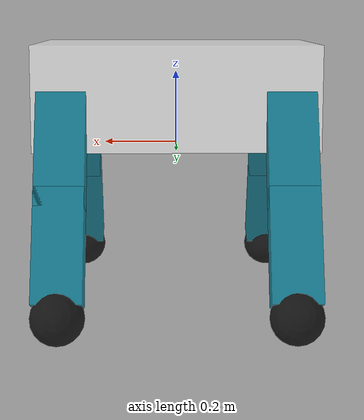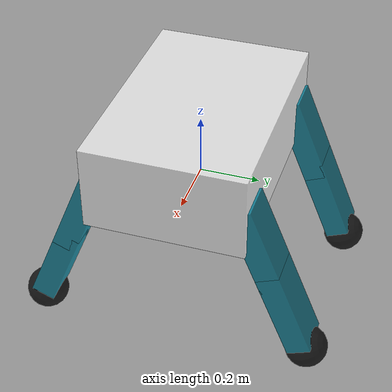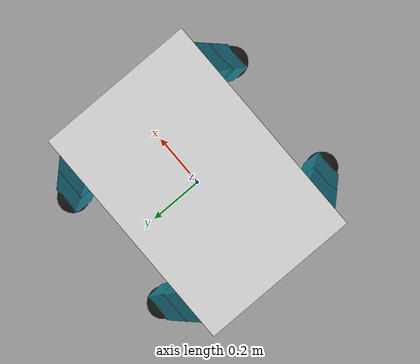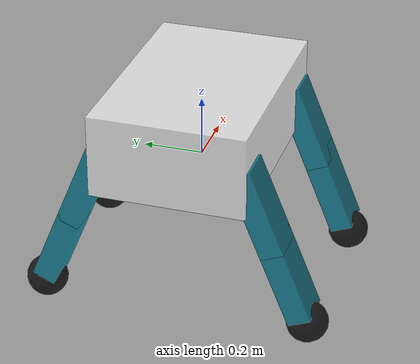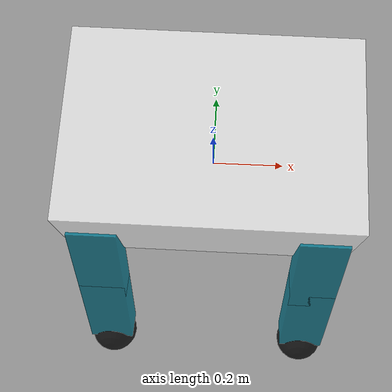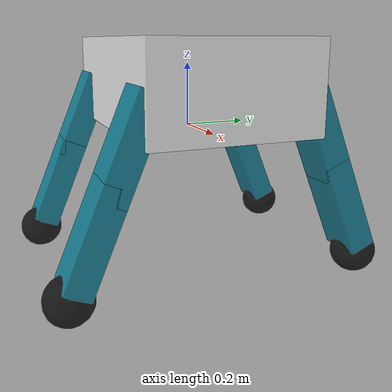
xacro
<?xml version="1.0"?>
<robot xmlns:xacro="http://www.ros.org/wiki/xacro">

    <xacro:include filename="inertial_macros.xacro"/>

    <material name="white">
        <color rgba="1 1 1 0.8"/>
    </material>
    <material name="teal">
        <color rgba="0 0.5 0.6 0.8"/>
    </material>
    <material name="black">
        <color rgba="0 0 0 0.8"/>
    </material>

<!-- BASE LINK -->
    <link name="base_link">
    </link>

<!-- COMMON BODY -->
    <joint name="chassis_joint" type="fixed">
        <parent link="base_link"/>
        <child link="chassis"/>
        <origin xyz="0 0 0"/>
    </joint>

    <link name="chassis">
        <visual>
            <origin xyz="0 0 0.14"/>
            <geometry>
                <box size="0.76 0.52 0.28"/>
            </geometry>
            <material name="white"/>
        </visual>
        <collision>
        <origin xyz="0 0 0.14"/>
            <geometry>
                <box size="0.76 0.52 0.28"/>
            </geometry>
        </collision>
        <xacro:inertial_box mass="0.5" x="0.76" y="0.52" z="0.28">
            <origin xyz="0 0 0.14" rpy="0 0 0"/>
        </xacro:inertial_box>
    </link>

<!-- BACK LEFT LEG -->
<joint name="back_left_hip_joint" type="revolute">
    <parent link="base_link"/>
    <child link="back_left_hip"/>
    <origin xyz="-0.3 0.25 0.1" rpy="${pi/2} 0 0"/>
    <axis xyz="-1 0 0"/>
    <limit lower="${pi/2}" upper="${pi/4}" effort="0.1" velocity="0.1"/>
</joint>

<link name="back_left_hip">
    <visual>
        <origin xyz="0 0 0" rpy="0 0 0"/>
        <geometry>
            <sphere radius="0.01"/>
        </geometry>
        <material name="black"/>
    </visual>
    <collision>
        <origin xyz="0 0 0" rpy="0 0 0"/>
        <geometry>
            <sphere radius="0.01"/>
        </geometry>
    </collision>
    <xacro:inertial_sphere mass="0.05" radius="0.01">
        <origin xyz="0 0 0" rpy="0 0 0"/>
    </xacro:inertial_sphere>
</link>

<joint name="back_left_upper_leg_joint" type="revolute">
    <parent link="back_left_hip"/>
    <child link="back_left_upper_leg"/>
    <origin xyz="0 0 0" rpy="${pi/2} 0 0"/>
    <axis xyz="0 0 1"/>
    <limit lower="${3*pi/4}" upper="${5*pi/4}" effort="0.1" velocity="0.1"/>
</joint>

<link name="back_left_upper_leg">
    <visual>
        <origin xyz="0.0 0.1 0.0"/>
        <geometry>
            <box size="0.13 0.3 0.08"/>
        </geometry>
        <material name="teal"/>
    </visual>
    <collision>
        <origin xyz="0.0 0.1 0.0"/>
        <geometry>
            <box size="0.13 0.3 0.08"/>
        </geometry>
    </collision>
    <xacro:inertial_box mass="0.3" x="0.13" y="0.3" z="0.08">
        <origin xyz="0.0 0.1 0.0" rpy="0 0 0"/>
    </xacro:inertial_box>
</link>

<joint name="back_left_lower_leg_joint" type="revolute">
    <parent link="back_left_upper_leg"/>
    <child link="back_left_lower_leg"/>
    <origin xyz="0 0.25 0" rpy="0 0 0"/>
    <axis xyz="0 0 1"/>
    <limit lower="${3*pi/4}" upper="${5*pi/4}" effort="0.1" velocity="0.1"/>
</joint>

<link name="back_left_lower_leg">
    <visual>
        <origin xyz="0 -0.1 0"/>
        <geometry>
            <box size="0.13 0.3 0.08"/>
        </geometry>
        <material name="teal"/>
    </visual>
    <collision>
        <origin xyz="0 -0.1 0"/>
        <geometry>
            <box size="0.13 0.3 0.08"/>
        </geometry>
    </collision>
    <xacro:inertial_box mass="0.3" x="0.13" y="0.3" z="0.08">
        <origin xyz="0.0 -0.1 0.0" rpy="0 0 0"/>
    </xacro:inertial_box>
</link>

<joint name="back_left_foot_joint" type="fixed">
    <parent link="back_left_lower_leg"/>
    <child link="back_left_foot"/>
    <origin xyz="0 -0.28 0"/>
</joint>

<link name="back_left_foot">
    <visual>
        <origin xyz="0 0 0"/>
        <geometry>
            <sphere radius="0.07"/>
        </geometry>
        <material name="black"/>
    </visual>
    <collision>
        <origin xyz="0 0 0"/>
        <geometry>
            <sphere radius="0.07"/>
        </geometry>
    </collision>
    <xacro:inertial_sphere mass="0.1" radius="0.07">
        <origin xyz="0 0 0" rpy="0 0 0"/>
    </xacro:inertial_sphere>
</link>

<!-- BACK RIGHT LEG -->
<joint name="back_right_hip_joint" type="revolute">
    <parent link="base_link"/>
    <child link="back_right_hip"/>
    <origin xyz="-0.3 -0.25 0.1" rpy="${pi/2} 0 0"/>
    <axis xyz="1 0 0"/>
    <limit lower="${3*pi/2}" upper="${5*pi/4}" effort="0.1" velocity="0.1"/>
</joint>

<link name="back_right_hip">
    <visual>
        <origin xyz="0 0 0" rpy="0 0 0"/>
        <geometry>
            <sphere radius="0.01"/>
        </geometry>
        <material name="black"/>
    </visual>
    <collision>
        <origin xyz="0 0 0" rpy="0 0 0"/>
        <geometry>
            <sphere radius="0.01"/>
        </geometry>
    </collision>
    <xacro:inertial_sphere mass="0.05" radius="0.01">
        <origin xyz="0 0 0" rpy="0 0 0"/>
    </xacro:inertial_sphere>
</link>

<joint name="back_right_upper_leg_joint" type="revolute">
    <parent link="back_right_hip"/>
    <child link="back_right_upper_leg"/>
    <origin xyz="0 0 0" rpy="${pi/2} 0 0"/>
    <axis xyz="0 0 1"/>
    <limit lower="${3*pi/4}" upper="${5*pi/4}" effort="0.1" velocity="0.1"/>
</joint>

<link name="back_right_upper_leg">
    <visual>
        <origin xyz="0.0 0.1 0.0"/>
        <geometry>
            <box size="0.13 0.3 0.08"/>
        </geometry>
        <material name="teal"/>
    </visual>
    <collision>
        <origin xyz="0.0 0.1 0.0"/>
        <geometry>
            <box size="0.13 0.3 0.08"/>
        </geometry>
    </collision>
    <xacro:inertial_box mass="0.3" x="0.13" y="0.3" z="0.08">
        <origin xyz="0.0 0.1 0.0" rpy="0 0 0"/>
    </xacro:inertial_box>
</link>

<joint name="back_right_lower_leg_joint" type="revolute">
    <parent link="back_right_upper_leg"/>
    <child link="back_right_lower_leg"/>
    <origin xyz="0 0.25 0" rpy="0 0 0"/>
    <axis xyz="0 0 1"/>
    <limit lower="${3*pi/4}" upper="${5*pi/4}" effort="0.1" velocity="0.1"/>
</joint>

<link name="back_right_lower_leg">
    <visual>
        <origin xyz="0 -0.1 0"/>
        <geometry>
            <box size="0.13 0.3 0.08"/>
        </geometry>
        <material name="teal"/>
    </visual>
    <collision>
        <origin xyz="0 -0.1 0"/>
        <geometry>
            <box size="0.13 0.3 0.08"/>
        </geometry>
        <material name="teal"/>
    </collision>
    <xacro:inertial_box mass="0.3" x="0.13" y="0.3" z="0.08">
        <origin xyz="0.0 -0.1 0.0" rpy="0 0 0"/>
    </xacro:inertial_box>
</link>

<joint name="back_right_foot_joint" type="fixed">
    <parent link="back_right_lower_leg"/>
    <child link="back_right_foot"/>
    <origin xyz="0 -0.28 0"/>
</joint>

<link name="back_right_foot">
    <visual>
        <origin xyz="0 0 0"/>
        <geometry>
            <sphere radius="0.07"/>
        </geometry>
        <material name="black"/>
    </visual>
    <collision>
        <origin xyz="0 0 0"/>
        <geometry>
            <sphere radius="0.07"/>
        </geometry>
    </collision>
    <xacro:inertial_sphere mass="0.1" radius="0.07">
        <origin xyz="0 0 0" rpy="0 0 0"/>
    </xacro:inertial_sphere>
</link>

<!-- FRONT LEFT LEG -->
<joint name="front_left_hip_joint" type="revolute">
    <parent link="base_link"/>
    <child link="front_left_hip"/>
    <origin xyz="0.3 0.25 0.1" rpy="${pi/2} 0 0"/>
    <axis xyz="-1 0 0"/>
    <limit lower="${pi/2}" upper="${pi/4}" effort="0.1" velocity="0.1"/>
</joint>

<link name="front_left_hip">
    <visual>
        <origin xyz="0 0 0" rpy="0 0 0"/>
        <geometry>
            <sphere radius="0.01"/>
        </geometry>
        <material name="black"/>
    </visual>
    <collision>
        <origin xyz="0 0 0" rpy="0 0 0"/>
        <geometry>
            <sphere radius="0.01"/>
        </geometry>
    </collision>
    <xacro:inertial_sphere mass="0.05" radius="0.01">
        <origin xyz="0 0 0" rpy="0 0 0"/>
    </xacro:inertial_sphere>
</link>

<joint name="front_left_upper_leg_joint" type="revolute">
    <parent link="front_left_hip"/>
    <child link="front_left_upper_leg"/>
    <origin xyz="0 0 0" rpy="${pi/2} 0 0"/>
    <axis xyz="0 0 -1"/>
    <limit lower="${3*pi/4}" upper="${5*pi/4}" effort="0.1" velocity="0.1"/>
</joint>

<link name="front_left_upper_leg">
    <visual>
        <origin xyz="0.0 0.1 0.0"/>
        <geometry>
            <box size="0.13 0.3 0.08"/>
        </geometry>
        <material name="teal"/>
    </visual>
    <collision>
        <origin xyz="0.0 0.1 0.0"/>
        <geometry>
            <box size="0.13 0.3 0.08"/>
        </geometry>
    </collision>
    <xacro:inertial_box mass="0.3" x="0.13" y="0.3" z="0.08">
        <origin xyz="0.0 0.1 0.0" rpy="0 0 0"/>
    </xacro:inertial_box>
</link>

<joint name="front_left_lower_leg_joint" type="revolute">
    <parent link="front_left_upper_leg"/>
    <child link="front_left_lower_leg"/>
    <origin xyz="0 0.25 0" rpy="0 0 0"/>
    <axis xyz="0 0 1"/>
    <limit lower="${3*pi/4}" upper="${5*pi/4}" effort="0.1" velocity="0.1"/>
</joint>

<link name="front_left_lower_leg">
    <visual>
        <origin xyz="0 -0.1 0"/>
        <geometry>
            <box size="0.13 0.3 0.08"/>
        </geometry>
        <material name="teal"/>
    </visual>
    <collision>
        <origin xyz="0 -0.1 0"/>
        <geometry>
            <box size="0.13 0.3 0.08"/>
        </geometry>
    </collision>
    <xacro:inertial_box mass="0.3" x="0.13" y="0.3" z="0.08">
        <origin xyz="0.0 -0.1 0.0" rpy="0 0 0"/>
    </xacro:inertial_box>
</link>

<joint name="front_left_foot_joint" type="fixed">
    <parent link="front_left_lower_leg"/>
    <child link="front_left_foot"/>
    <origin xyz="0 -0.28 0"/>
</joint>

<link name="front_left_foot">
    <visual>
        <origin xyz="0 0 0"/>
        <geometry>
            <sphere radius="0.07"/>
        </geometry>
        <material name="black"/>
    </visual>
    <collision>
        <origin xyz="0 0 0"/>
        <geometry>
            <sphere radius="0.07"/>
        </geometry>
    </collision>
    <xacro:inertial_sphere mass="0.1" radius="0.07">
        <origin xyz="0 0 0" rpy="0 0 0"/>
    </xacro:inertial_sphere>
</link>

<!-- FRONT RIGHT LEG -->
<joint name="front_right_hip_joint" type="revolute">
    <parent link="base_link"/>
    <child link="front_right_hip"/>
    <origin xyz="0.3 -0.25 0.1" rpy="${pi/2} 0 0"/>
    <axis xyz="1 0 0"/>
    <limit lower="${3*pi/2}" upper="${5*pi/4}" effort="0.1" velocity="0.1"/>
</joint>

<link name="front_right_hip">
    <visual>
        <origin xyz="0 0 0" rpy="0 0 0"/>
        <geometry>
            <sphere radius="0.01"/>
        </geometry>
        <material name="black"/>
    </visual>
    <collision>
        <origin xyz="0 0 0" rpy="0 0 0"/>
        <geometry>
            <sphere radius="0.01"/>
        </geometry>
    </collision>
    <xacro:inertial_sphere mass="0.05" radius="0.01">
        <origin xyz="0 0 0" rpy="0 0 0"/>
    </xacro:inertial_sphere>
</link>

<joint name="front_right_upper_leg_joint" type="revolute">
    <parent link="front_right_hip"/>
    <child link="front_right_upper_leg"/>
    <origin xyz="0 0 0" rpy="${pi/2} 0 0"/>
    <axis xyz="0 0 -1"/>
    <limit lower="${3*pi/4}" upper="${5*pi/4}" effort="0.1" velocity="0.1"/>
</joint>

<link name="front_right_upper_leg">
    <visual>
        <origin xyz="0.0 0.1 0.0"/>
        <geometry>
            <box size="0.13 0.3 0.08"/>
        </geometry>
        <material name="teal"/>
    </visual>
    <collision>
        <origin xyz="0.0 0.1 0.0"/>
        <geometry>
            <box size="0.13 0.3 0.08"/>
        </geometry>
    </collision>
    <xacro:inertial_box mass="0.3" x="0.13" y="0.3" z="0.08">
        <origin xyz="0.0 0.1 0.0" rpy="0 0 0"/>
    </xacro:inertial_box>
</link>

<joint name="front_right_lower_leg_joint" type="revolute">
    <parent link="front_right_upper_leg"/>
    <child link="front_right_lower_leg"/>
    <origin xyz="0 0.25 0" rpy="0 0 0"/>
    <axis xyz="0 0 1"/>
    <limit lower="${3*pi/4}" upper="${5*pi/4}" effort="0.1" velocity="0.1"/>
</joint>

<link name="front_right_lower_leg">
    <visual>
        <origin xyz="0 -0.1 0"/>
        <geometry>
            <box size="0.13 0.3 0.08"/>
        </geometry>
        <material name="teal"/>
    </visual>
    <collision>
        <origin xyz="0 -0.1 0"/>
        <geometry>
            <box size="0.13 0.3 0.08"/>
        </geometry>
    </collision>
    <xacro:inertial_box mass="0.3" x="0.13" y="0.3" z="0.08">
        <origin xyz="0.0 -0.1 0.0" rpy="0 0 0"/>
    </xacro:inertial_box>
</link>

<joint name="front_right_foot_joint" type="fixed">
    <parent link="front_right_lower_leg"/>
    <child link="front_right_foot"/>
    <origin xyz="0 -0.28 0"/>
</joint>

<link name="front_right_foot">
    <visual>
        <origin xyz="0 0 0"/>
        <geometry>
            <sphere radius="0.07"/>
        </geometry>
        <material name="black"/>
    </visual>
    <collision>
        <origin xyz="0 0 0"/>
        <geometry>
            <sphere radius="0.07"/>
        </geometry>
    </collision>
    <xacro:inertial_sphere mass="0.1" radius="0.07">
        <origin xyz="0 0 0" rpy="0 0 0"/>
    </xacro:inertial_sphere>
</link>

</robot>
